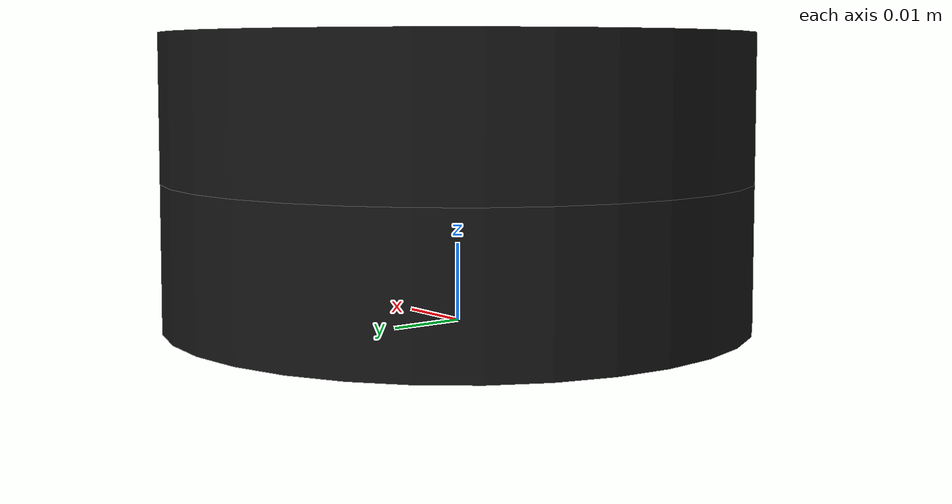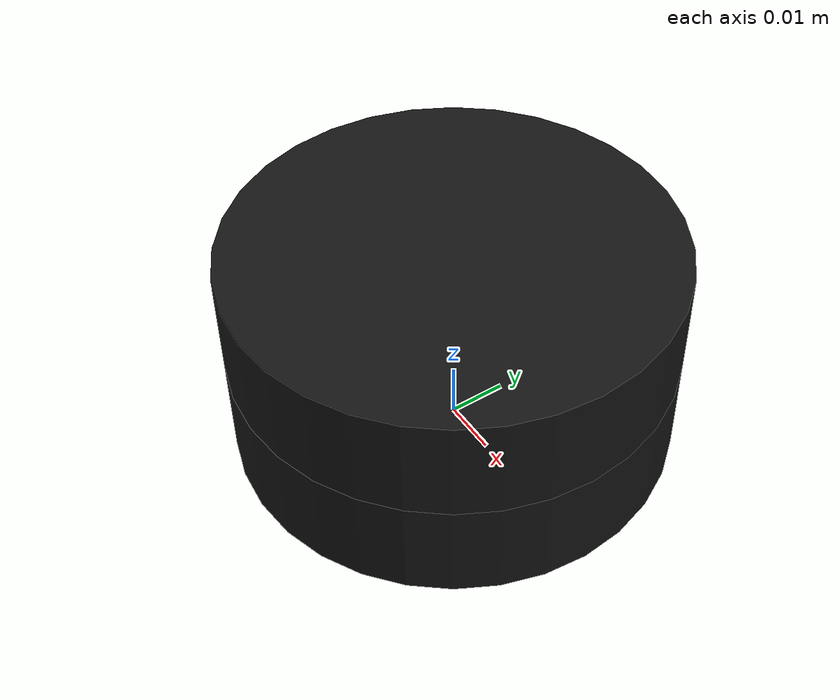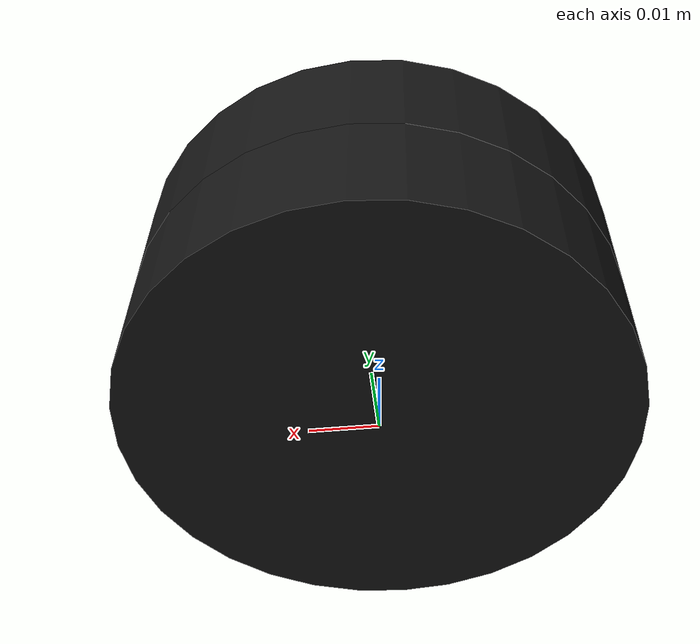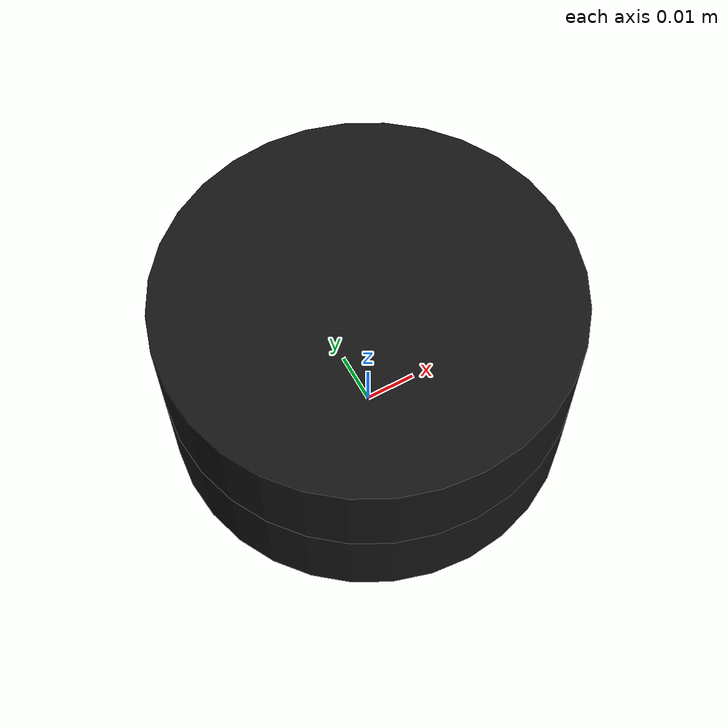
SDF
<?xml version='1.0'?>
<sdf version='1.5'>
  <model name="rplidar_a2_m6">
    <static>false</static>

    <link name="case">
      <pose>0 0 0 0 0 0</pose>

      <inertial>
        <pose>0.000000 -0.000000 0.009300 0 0 0</pose>
        <mass>0.2</mass>
        <inertia>
          <ixx>0.006399e-2</ixx>
          <iyy>0.006399e-2</iyy>
          <izz>0.011840e-2</izz>
          <ixy>0.0</ixy>
          <ixz>0.0</ixz>
          <iyz>0.0</iyz>
        </inertia>
      </inertial>

      <collision name="collision">
        <pose>0 0 0.0093 0 0 0</pose>
        <geometry>
          <cylinder>
            <radius>0.03785</radius>
            <length>0.0186</length>
          </cylinder>
        </geometry>
      </collision>

      <visual name="visual">
        <pose>0 0 0 0 0 0</pose>
        <geometry>
          <mesh>
            <uri>model://rplidar_a2_m6/meshes/rplidar_a2.dae</uri>
          </mesh>
        </geometry>
      </visual>
    </link>

    <link name="sensor">
      <pose>0 0 0.0186 0 0 0</pose>

      <inertial>
        <pose>0.000000 -0.000000 0.009300 0 0 0</pose>
        <mass>0.1</mass>
        <inertia>
          <ixx>0.006399e-2</ixx>
          <iyy>0.006399e-2</iyy>
          <izz>0.011840e-2</izz>
          <ixy>0.0</ixy>
          <ixz>0.0</ixz>
          <iyz>0.0</iyz>
        </inertia>
      </inertial>

      <collision name="collision">
        <pose>0 0 0.0093 0 0 0</pose>
        <geometry>
          <cylinder>
            <radius>0.03785</radius>
            <length>0.0186</length>
          </cylinder>
        </geometry>
      </collision>

      <visual name="visual">
        <pose>0 0 0 0 0 0</pose>
        <geometry>
          <mesh>
            <uri>model://rplidar_a2_m6/meshes/rplidar_a2.dae</uri>
          </mesh>
        </geometry>
      </visual>

      <sensor type="gpu_ray" name="laser">
        <pose>0 0 0.04 0 0 0</pose>
        <visualize>false</visualize>
        <update_rate>10</update_rate>
        <ray>
          <scan>
            <horizontal>
              <samples>1024</samples>
              <resolution>1</resolution>
              <min_angle>-3.14</min_angle>
              <max_angle> 3.14</max_angle>
            </horizontal>
          </scan>
          <range>
            <min>0.15</min>
            <max>20.0</max>
            <resolution>0.03</resolution>
          </range>
          <noise>
            <type>gaussian</type>
            <mean>0.0</mean>
            <stddev>0.02</stddev>
          </noise>
        </ray>
        <plugin name="laser_plugin" filename="libgazebo_ros_gpu_laser.so">
          <topicName>/morty/scan</topicName>
          <frameName>rplidar</frameName>
        </plugin>
      </sensor>
    </link>

    <joint type="fixed" name="sensor_case">
      <child>sensor</child>
      <parent>case</parent>
    </joint>

  </model>
</sdf>
